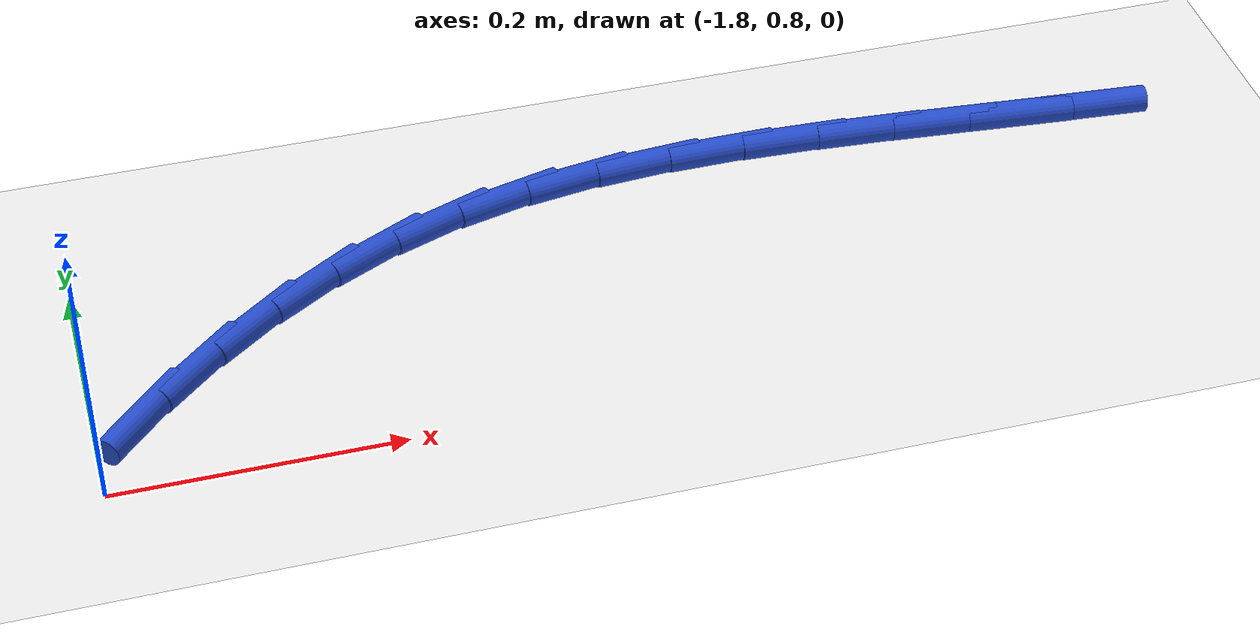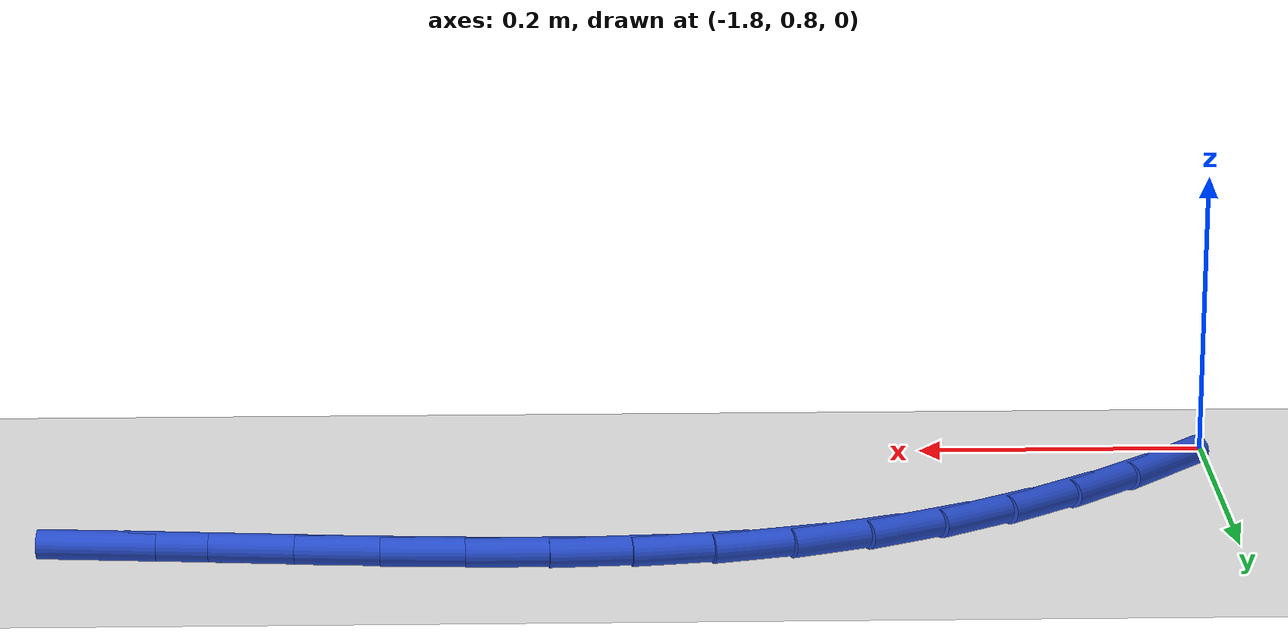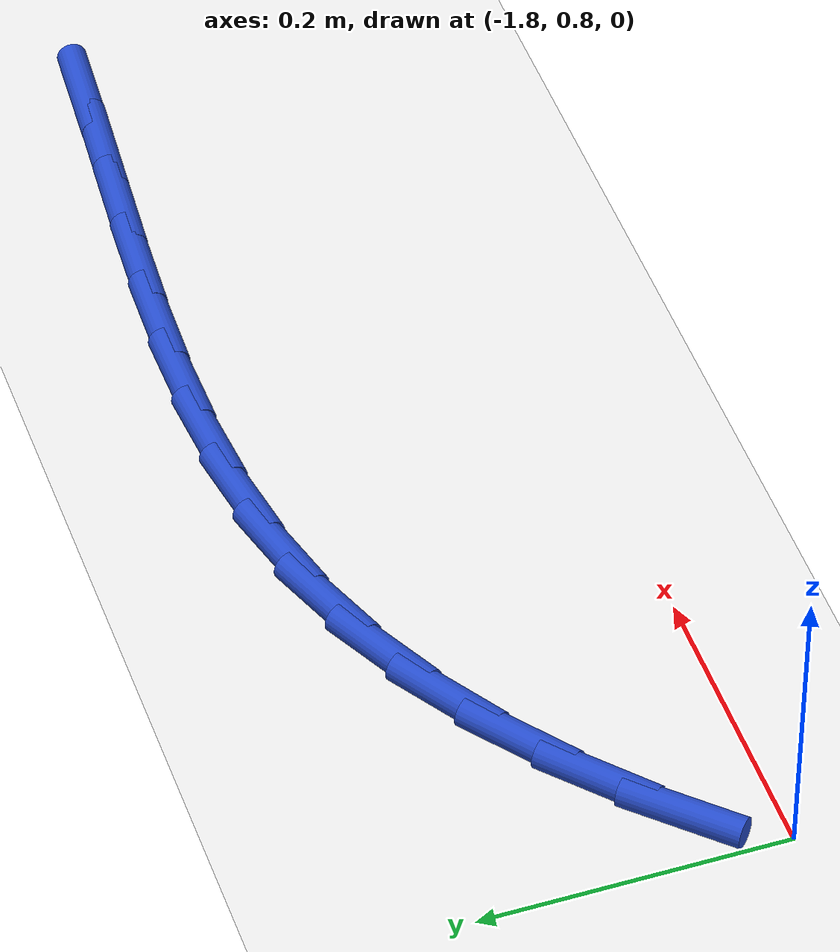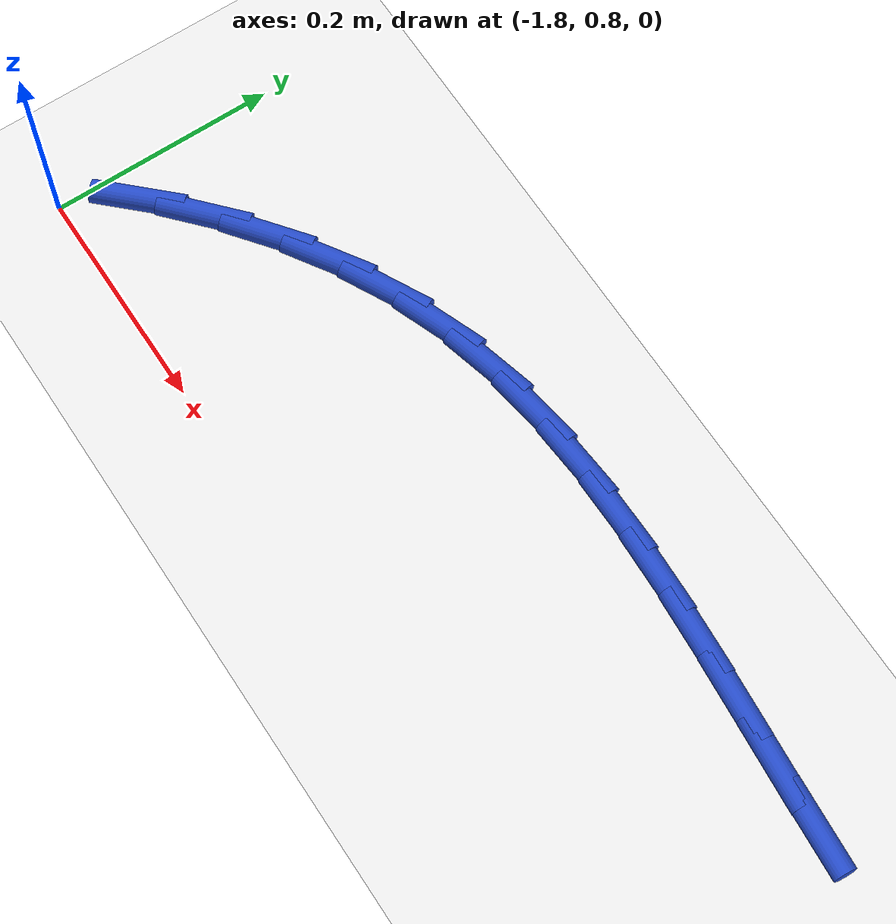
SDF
<sdf version="1.6">
 <world name="default">
  <model name="ground_plane">
   <static>1</static>
   <link name="link">
    <collision name="collision">
     <geometry><plane><normal>0 0 1</normal><size>100 100</size></plane></geometry>
     <surface><friction><ode><mu>100</mu><mu2>50</mu2></ode></friction></surface>
    </collision>
    <visual name="visual">
     <cast_shadows>0</cast_shadows>
     <geometry><plane><normal>0 0 1</normal><size>100 100</size></plane></geometry>
     <material>
      <script><uri>file://media/materials/scripts/gazebo.material</uri><name>Gazebo/WhiteGlow</name></script>
     </material>
    </visual>
   </link>
  </model>
  <model name="line">
   <link name="link_29">
    <pose>-1.0352609375378259 1.0091644634757688 0.01 0 1.57 -0.07737276402296275</pose>
    <collision name="collision">
     <geometry><cylinder><radius>0.01</radius><length>0.08</length></cylinder></geometry>
    </collision>
    <visual name="visual">
     <material>
      <script><name>Gazebo/Blue</name><uri>file://media/materials/scripts/gazebo.material</uri></script>
     </material>
     <geometry><cylinder><radius>0.01</radius><length>0.08</length></cylinder></geometry>
    </visual>
   </link>
   <link name="link_30">
    <pose>-1.0926173505920367 1.0136111646900592 0.01 0 1.57 -0.08706603995972927</pose>
    <collision name="collision">
     <geometry><cylinder><radius>0.01</radius><length>0.08</length></cylinder></geometry>
    </collision>
    <visual name="visual">
     <material>
      <script><name>Gazebo/Blue</name><uri>file://media/materials/scripts/gazebo.material</uri></script>
     </material>
     <geometry><cylinder><radius>0.01</radius><length>0.08</length></cylinder></geometry>
    </visual>
   </link>
   <link name="link_31">
    <pose>-1.1499851501375788 1.0186186111916147 0.01 0 1.57 -0.08370063188727182</pose>
    <collision name="collision">
     <geometry><cylinder><radius>0.01</radius><length>0.08</length></cylinder></geometry>
    </collision>
    <visual name="visual">
     <material>
      <script><name>Gazebo/Blue</name><uri>file://media/materials/scripts/gazebo.material</uri></script>
     </material>
     <geometry><cylinder><radius>0.01</radius><length>0.08</length></cylinder></geometry>
    </visual>
   </link>
   <link name="link_32">
    <pose>-1.207161438814022 1.02341550994926 0.01 0 1.57 -0.06654089979277915</pose>
    <collision name="collision">
     <geometry><cylinder><radius>0.01</radius><length>0.08</length></cylinder></geometry>
    </collision>
    <visual name="visual">
     <material>
      <script><name>Gazebo/Blue</name><uri>file://media/materials/scripts/gazebo.material</uri></script>
     </material>
     <geometry><cylinder><radius>0.01</radius><length>0.08</length></cylinder></geometry>
    </visual>
   </link>
   <link name="link_33">
    <pose>-1.263942419331268 1.027199353697209 0.01 0 1.57 -0.03501977783365039</pose>
    <collision name="collision">
     <geometry><cylinder><radius>0.01</radius><length>0.08</length></cylinder></geometry>
    </collision>
    <visual name="visual">
     <material>
      <script><name>Gazebo/Blue</name><uri>file://media/materials/scripts/gazebo.material</uri></script>
     </material>
     <geometry><cylinder><radius>0.01</radius><length>0.08</length></cylinder></geometry>
    </visual>
   </link>
   <link name="link_34">
    <pose>-1.3201242943992209 1.0291676351696788 0.01 0 1.57 0.011732941659556236</pose>
    <collision name="collision">
     <geometry><cylinder><radius>0.01</radius><length>0.08</length></cylinder></geometry>
    </collision>
    <visual name="visual">
     <material>
      <script><name>Gazebo/Blue</name><uri>file://media/materials/scripts/gazebo.material</uri></script>
     </material>
     <geometry><cylinder><radius>0.01</radius><length>0.08</length></cylinder></geometry>
    </visual>
   </link>
   <link name="link_35">
    <pose>-1.3755032667277836 1.0285178471008836 0.01 0 1.57 0.0747216640031009</pose>
    <collision name="collision">
     <geometry><cylinder><radius>0.01</radius><length>0.08</length></cylinder></geometry>
    </collision>
    <visual name="visual">
     <material>
      <script><name>Gazebo/Blue</name><uri>file://media/materials/scripts/gazebo.material</uri></script>
     </material>
     <geometry><cylinder><radius>0.01</radius><length>0.08</length></cylinder></geometry>
    </visual>
   </link>
   <link name="link_36">
    <pose>-1.4298755390268587 1.0244474822250398 0.01 0 1.57 0.15475658471390336</pose>
    <collision name="collision">
     <geometry><cylinder><radius>0.01</radius><length>0.08</length></cylinder></geometry>
    </collision>
    <visual name="visual">
     <material>
      <script><name>Gazebo/Blue</name><uri>file://media/materials/scripts/gazebo.material</uri></script>
     </material>
     <geometry><cylinder><radius>0.01</radius><length>0.08</length></cylinder></geometry>
    </visual>
   </link>
   <link name="link_37">
    <pose>-1.4830373140063497 1.016154033276362 0.01 0 1.57 0.25191735610613525</pose>
    <collision name="collision">
     <geometry><cylinder><radius>0.01</radius><length>0.08</length></cylinder></geometry>
    </collision>
    <visual name="visual">
     <material>
      <script><name>Gazebo/Blue</name><uri>file://media/materials/scripts/gazebo.material</uri></script>
     </material>
     <geometry><cylinder><radius>0.01</radius><length>0.08</length></cylinder></geometry>
    </visual>
   </link>
   <link name="link_38">
    <pose>-1.53478479437616 1.0028349929890663 0.01 0 1.57 0.362223956606072</pose>
    <collision name="collision">
     <geometry><cylinder><radius>0.01</radius><length>0.08</length></cylinder></geometry>
    </collision>
    <visual name="visual">
     <material>
      <script><name>Gazebo/Blue</name><uri>file://media/materials/scripts/gazebo.material</uri></script>
     </material>
     <geometry><cylinder><radius>0.01</radius><length>0.08</length></cylinder></geometry>
    </visual>
   </link>
   <link name="link_39">
    <pose>-1.584921703781174 0.983835910595142 0.01 0 1.57 0.4685826887984389</pose>
    <collision name="collision">
     <geometry><cylinder><radius>0.01</radius><length>0.08</length></cylinder></geometry>
    </collision>
    <visual name="visual">
     <material>
      <script><name>Gazebo/Blue</name><uri>file://media/materials/scripts/gazebo.material</uri></script>
     </material>
     <geometry><cylinder><radius>0.01</radius><length>0.08</length></cylinder></geometry>
    </visual>
   </link>
   <link name="link_40">
    <pose>-1.6332948353529093 0.9593501976426636 0.01 0 1.57 0.5652713417168901</pose>
    <collision name="collision">
     <geometry><cylinder><radius>0.01</radius><length>0.08</length></cylinder></geometry>
    </collision>
    <visual name="visual">
     <material>
      <script><name>Gazebo/Blue</name><uri>file://media/materials/scripts/gazebo.material</uri></script>
     </material>
     <geometry><cylinder><radius>0.01</radius><length>0.08</length></cylinder></geometry>
    </visual>
   </link>
   <link name="link_41">
    <pose>-1.6797662869350112 0.929872552964122 0.01 0 1.57 0.6528067292240345</pose>
    <collision name="collision">
     <geometry><cylinder><radius>0.01</radius><length>0.08</length></cylinder></geometry>
    </collision>
    <visual name="visual">
     <material>
      <script><name>Gazebo/Blue</name><uri>file://media/materials/scripts/gazebo.material</uri></script>
     </material>
     <geometry><cylinder><radius>0.01</radius><length>0.08</length></cylinder></geometry>
    </visual>
   </link>
   <link name="link_42">
    <pose>-1.7241981747195745 0.8958980365981398 0.01 0 1.57 0.7321260271096017</pose>
    <collision name="collision">
     <geometry><cylinder><radius>0.01</radius><length>0.08</length></cylinder></geometry>
    </collision>
    <visual name="visual">
     <material>
      <script><name>Gazebo/Blue</name><uri>file://media/materials/scripts/gazebo.material</uri></script>
     </material>
     <geometry><cylinder><radius>0.01</radius><length>0.08</length></cylinder></geometry>
    </visual>
   </link>
   <link name="link_43">
    <pose>-1.7664526148986988 0.8579217085833394 0.01 0 1.57 0.804358423131524</pose>
    <collision name="collision">
     <geometry><cylinder><radius>0.01</radius><length>0.08</length></cylinder></geometry>
    </collision>
    <visual name="visual">
     <material>
      <script><name>Gazebo/Blue</name><uri>file://media/materials/scripts/gazebo.material</uri></script>
     </material>
     <geometry><cylinder><radius>0.01</radius><length>0.08</length></cylinder></geometry>
    </visual>
   </link>
  </model>
 </world>
</sdf>
